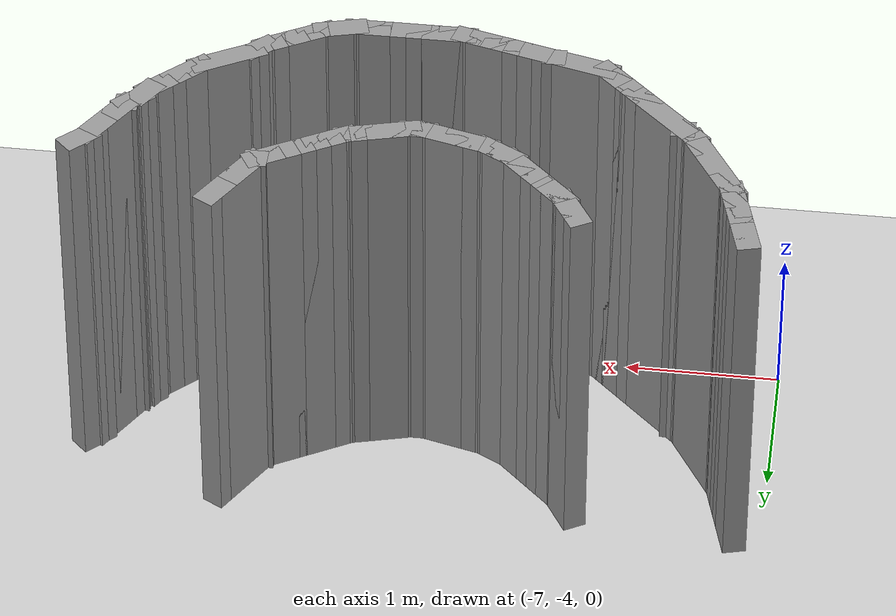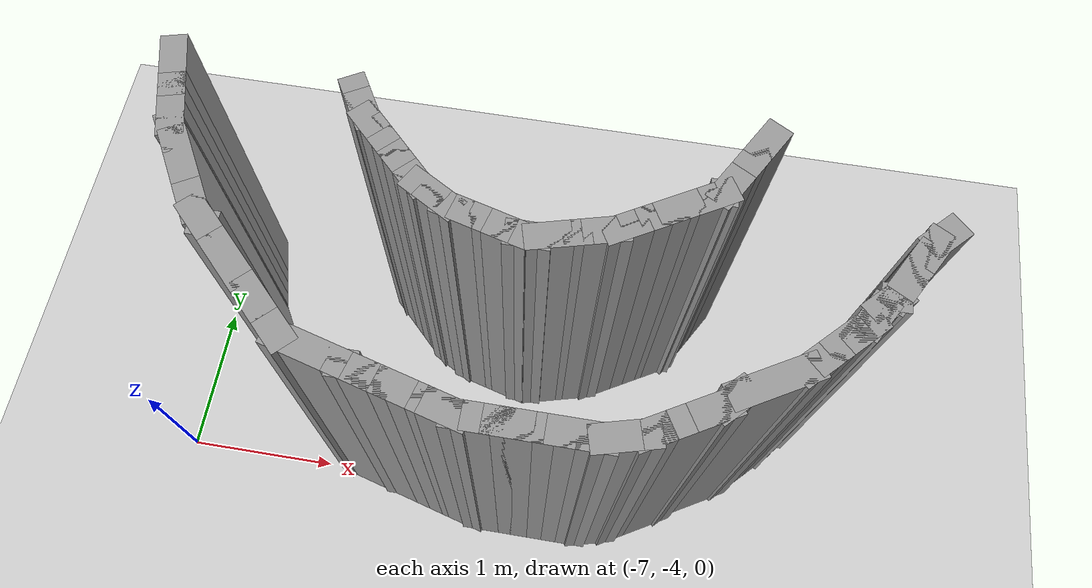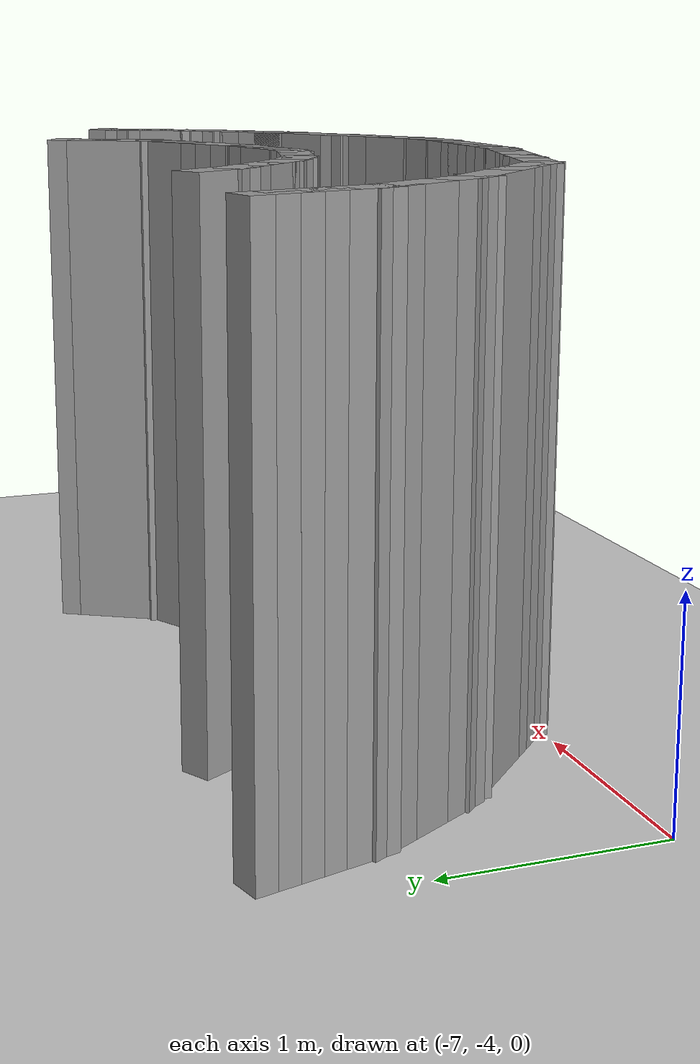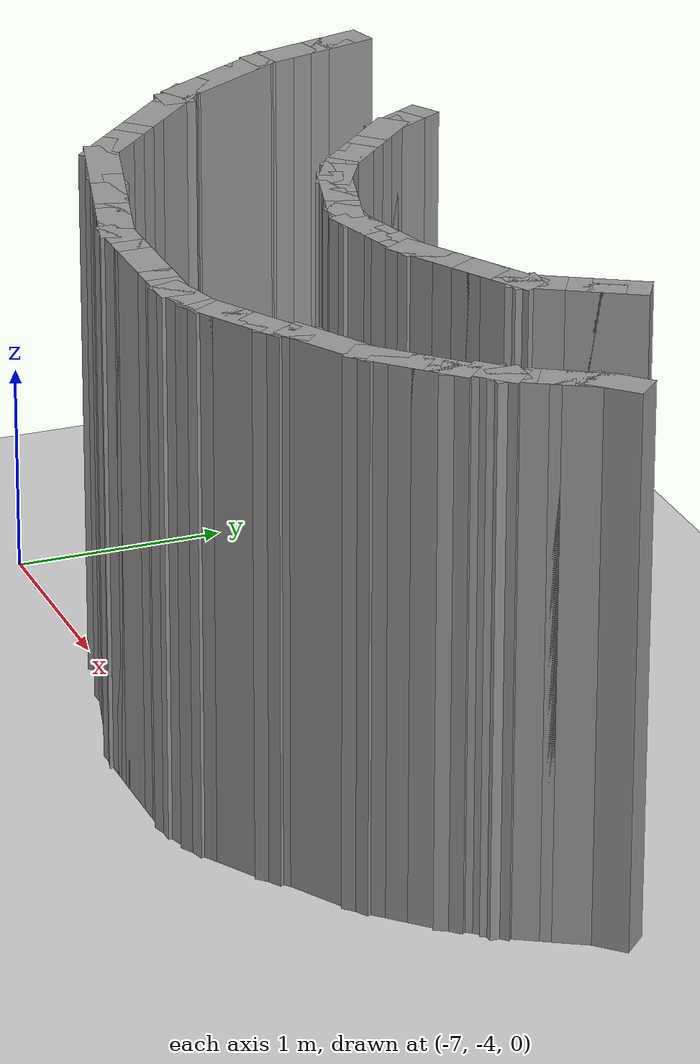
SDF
<sdf version="1.7">
 <world name="default">
  <model name="ground_plane">
   <static>1</static>
   <link name="link">
    <collision name="collision">
     <geometry><plane><normal>0 0 1</normal><size>100 100</size></plane></geometry>
     <surface><friction><ode><mu>100</mu><mu2>50</mu2></ode></friction></surface>
    </collision>
    <visual name="visual">
     <cast_shadows>0</cast_shadows>
     <geometry><plane><normal>0 0 1</normal><size>100 100</size></plane></geometry>
     <material>
      <script><uri>file://media/materials/scripts/gazebo.material</uri><name>Gazebo/Grey</name></script>
     </material>
    </visual>
   </link>
  </model>
  <model name="playground_track">
   <pose>0.405729 -1.1815 0 0 -0 0</pose>
   <link name="Wall_178">
    <collision name="Wall_178_Collision">
     <geometry><box><size>0.25 0.15 2.5</size></box></geometry>
     <pose>0 0 1.25 0 -0 0</pose>
    </collision>
    <visual name="Wall_178_Visual">
     <pose>0 0 1.25 0 -0 0</pose>
     <geometry><box><size>0.25 0.15 2.5</size></box></geometry>
     <material>
      <script><uri>file://media/materials/scripts/gazebo.material</uri><name>Gazebo/Grey</name></script>
      <ambient>1 1 1 1</ambient>
     </material>
     <meta><layer>0</layer></meta>
    </visual>
    <pose>-3.05179 -1.70277 0 0 -0 -2.35619</pose>
   </link>
   <link name="Wall_179">
    <collision name="Wall_179_Collision">
     <geometry><box><size>0.25 0.15 2.5</size></box></geometry>
     <pose>0 0 1.25 0 -0 0</pose>
    </collision>
    <visual name="Wall_179_Visual">
     <pose>0 0 1.25 0 -0 0</pose>
     <geometry><box><size>0.25 0.15 2.5</size></box></geometry>
     <material>
      <script><uri>file://media/materials/scripts/gazebo.material</uri><name>Gazebo/Grey</name></script>
      <ambient>1 1 1 1</ambient>
     </material>
     <meta><layer>0</layer></meta>
    </visual>
    <pose>-3.11215 -1.78143 0 0 -0 -2.0944</pose>
   </link>
   <link name="Wall_180">
    <collision name="Wall_180_Collision">
     <geometry><box><size>0.25 0.15 2.5</size></box></geometry>
     <pose>0 0 1.25 0 -0 0</pose>
    </collision>
    <visual name="Wall_180_Visual">
     <pose>0 0 1.25 0 -0 0</pose>
     <geometry><box><size>0.25 0.15 2.5</size></box></geometry>
     <material>
      <script><uri>file://media/materials/scripts/gazebo.material</uri><name>Gazebo/Grey</name></script>
      <ambient>1 1 1 1</ambient>
     </material>
     <meta><layer>0</layer></meta>
    </visual>
    <pose>-3.16215 -1.86803 0 0 -0 -2.0944</pose>
   </link>
   <link name="Wall_181">
    <collision name="Wall_181_Collision">
     <geometry><box><size>0.25 0.15 2.5</size></box></geometry>
     <pose>0 0 1.25 0 -0 0</pose>
    </collision>
    <visual name="Wall_181_Visual">
     <pose>0 0 1.25 0 -0 0</pose>
     <geometry><box><size>0.25 0.15 2.5</size></box></geometry>
     <material>
      <script><uri>file://media/materials/scripts/gazebo.material</uri><name>Gazebo/Grey</name></script>
      <ambient>1 1 1 1</ambient>
     </material>
     <meta><layer>0</layer></meta>
    </visual>
    <pose>-3.21215 -1.95463 0 0 -0 -2.0944</pose>
   </link>
   <link name="Wall_182">
    <collision name="Wall_182_Collision">
     <geometry><box><size>0.25 0.15 2.5</size></box></geometry>
     <pose>0 0 1.25 0 -0 0</pose>
    </collision>
    <visual name="Wall_182_Visual">
     <pose>0 0 1.25 0 -0 0</pose>
     <geometry><box><size>0.25 0.15 2.5</size></box></geometry>
     <material>
      <script><uri>file://media/materials/scripts/gazebo.material</uri><name>Gazebo/Grey</name></script>
      <ambient>1 1 1 1</ambient>
     </material>
     <meta><layer>0</layer></meta>
    </visual>
    <pose>-3.26215 -2.04124 0 0 -0 -2.0944</pose>
   </link>
   <link name="Wall_183">
    <collision name="Wall_183_Collision">
     <geometry><box><size>0.15 0.15 2.5</size></box></geometry>
     <pose>0 0 1.25 0 -0 0</pose>
    </collision>
    <visual name="Wall_183_Visual">
     <pose>0 0 1.25 0 -0 0</pose>
     <geometry><box><size>0.15 0.15 2.5</size></box></geometry>
     <material>
      <script><uri>file://media/materials/scripts/gazebo.material</uri><name>Gazebo/Grey</name></script>
      <ambient>1 1 1 1</ambient>
     </material>
     <meta><layer>0</layer></meta>
    </visual>
    <pose>-3.28715 -2.08454 0 0 -0 0</pose>
   </link>
   <link name="Wall_184">
    <collision name="Wall_184_Collision">
     <geometry><box><size>0.25 0.15 2.5</size></box></geometry>
     <pose>0 0 1.25 0 -0 0</pose>
    </collision>
    <visual name="Wall_184_Visual">
     <pose>0 0 1.25 0 -0 0</pose>
     <geometry><box><size>0.25 0.15 2.5</size></box></geometry>
     <material>
      <script><uri>file://media/materials/scripts/gazebo.material</uri><name>Gazebo/Grey</name></script>
      <ambient>1 1 1 1</ambient>
     </material>
     <meta><layer>0</layer></meta>
    </visual>
    <pose>-3.3225 -2.11989 0 0 -0 -2.35619</pose>
   </link>
   <link name="Wall_185">
    <collision name="Wall_185_Collision">
     <geometry><box><size>0.25 0.15 2.5</size></box></geometry>
     <pose>0 0 1.25 0 -0 0</pose>
    </collision>
    <visual name="Wall_185_Visual">
     <pose>0 0 1.25 0 -0 0</pose>
     <geometry><box><size>0.25 0.15 2.5</size></box></geometry>
     <material>
      <script><uri>file://media/materials/scripts/gazebo.material</uri><name>Gazebo/Grey</name></script>
      <ambient>1 1 1 1</ambient>
     </material>
     <meta><layer>0</layer></meta>
    </visual>
    <pose>-3.38286 -2.19855 0 0 -0 -2.0944</pose>
   </link>
   <link name="Wall_186">
    <collision name="Wall_186_Collision">
     <geometry><box><size>0.25 0.15 2.5</size></box></geometry>
     <pose>0 0 1.25 0 -0 0</pose>
    </collision>
    <visual name="Wall_186_Visual">
     <pose>0 0 1.25 0 -0 0</pose>
     <geometry><box><size>0.25 0.15 2.5</size></box></geometry>
     <material>
      <script><uri>file://media/materials/scripts/gazebo.material</uri><name>Gazebo/Grey</name></script>
      <ambient>1 1 1 1</ambient>
     </material>
     <meta><layer>0</layer></meta>
    </visual>
    <pose>-3.44321 -2.27721 0 0 -0 -2.35619</pose>
   </link>
   <link name="Wall_187">
    <collision name="Wall_187_Collision">
     <geometry><box><size>0.25 0.15 2.5</size></box></geometry>
     <pose>0 0 1.25 0 -0 0</pose>
    </collision>
    <visual name="Wall_187_Visual">
     <pose>0 0 1.25 0 -0 0</pose>
     <geometry><box><size>0.25 0.15 2.5</size></box></geometry>
     <material>
      <script><uri>file://media/materials/scripts/gazebo.material</uri><name>Gazebo/Grey</name></script>
      <ambient>1 1 1 1</ambient>
     </material>
     <meta><layer>0</layer></meta>
    </visual>
    <pose>-3.51392 -2.34792 0 0 -0 -2.35619</pose>
   </link>
   <link name="Wall_188">
    <collision name="Wall_188_Collision">
     <geometry><box><size>0.25 0.15 2.5</size></box></geometry>
     <pose>0 0 1.25 0 -0 0</pose>
    </collision>
    <visual name="Wall_188_Visual">
     <pose>0 0 1.25 0 -0 0</pose>
     <geometry><box><size>0.25 0.15 2.5</size></box></geometry>
     <material>
      <script><uri>file://media/materials/scripts/gazebo.material</uri><name>Gazebo/Grey</name></script>
      <ambient>1 1 1 1</ambient>
     </material>
     <meta><layer>0</layer></meta>
    </visual>
    <pose>-3.58464 -2.41863 0 0 -0 -2.35619</pose>
   </link>
   <link name="Wall_189">
    <collision name="Wall_189_Collision">
     <geometry><box><size>0.25 0.15 2.5</size></box></geometry>
     <pose>0 0 1.25 0 -0 0</pose>
    </collision>
    <visual name="Wall_189_Visual">
     <pose>0 0 1.25 0 -0 0</pose>
     <geometry><box><size>0.25 0.15 2.5</size></box></geometry>
     <material>
      <script><uri>file://media/materials/scripts/gazebo.material</uri><name>Gazebo/Grey</name></script>
      <ambient>1 1 1 1</ambient>
     </material>
     <meta><layer>0</layer></meta>
    </visual>
    <pose>-3.65535 -2.48934 0 0 -0 -2.35619</pose>
   </link>
   <link name="Wall_190">
    <collision name="Wall_190_Collision">
     <geometry><box><size>0.5 0.15 2.5</size></box></geometry>
     <pose>0 0 1.25 0 -0 0</pose>
    </collision>
    <visual name="Wall_190_Visual">
     <pose>0 0 1.25 0 -0 0</pose>
     <geometry><box><size>0.5 0.15 2.5</size></box></geometry>
     <material>
      <script><uri>file://media/materials/scripts/gazebo.material</uri><name>Gazebo/Grey</name></script>
      <ambient>1 1 1 1</ambient>
     </material>
     <meta><layer>0</layer></meta>
    </visual>
    <pose>-3.84226 -2.61219 0 0 -0 -2.61799</pose>
   </link>
   <link name="Wall_191">
    <collision name="Wall_191_Collision">
     <geometry><box><size>0.25 0.15 2.5</size></box></geometry>
     <pose>0 0 1.25 0 -0 0</pose>
    </collision>
    <visual name="Wall_191_Visual">
     <pose>0 0 1.25 0 -0 0</pose>
     <geometry><box><size>0.25 0.15 2.5</size></box></geometry>
     <material>
      <script><uri>file://media/materials/scripts/gazebo.material</uri><name>Gazebo/Grey</name></script>
      <ambient>1 1 1 1</ambient>
     </material>
     <meta><layer>0</layer></meta>
    </visual>
    <pose>-4.02916 -2.73505 0 0 -0 -2.35619</pose>
   </link>
   <link name="Wall_192">
    <collision name="Wall_192_Collision">
     <geometry><box><size>0.25 0.15 2.5</size></box></geometry>
     <pose>0 0 1.25 0 -0 0</pose>
    </collision>
    <visual name="Wall_192_Visual">
     <pose>0 0 1.25 0 -0 0</pose>
     <geometry><box><size>0.25 0.15 2.5</size></box></geometry>
     <material>
      <script><uri>file://media/materials/scripts/gazebo.material</uri><name>Gazebo/Grey</name></script>
      <ambient>1 1 1 1</ambient>
     </material>
     <meta><layer>0</layer></meta>
    </visual>
    <pose>-4.10782 -2.7954 0 0 -0 -2.61799</pose>
   </link>
   <link name="Wall_193">
    <collision name="Wall_193_Collision">
     <geometry><box><size>0.25 0.15 2.5</size></box></geometry>
     <pose>0 0 1.25 0 -0 0</pose>
    </collision>
    <visual name="Wall_193_Visual">
     <pose>0 0 1.25 0 -0 0</pose>
     <geometry><box><size>0.25 0.15 2.5</size></box></geometry>
     <material>
      <script><uri>file://media/materials/scripts/gazebo.material</uri><name>Gazebo/Grey</name></script>
      <ambient>1 1 1 1</ambient>
     </material>
     <meta><layer>0</layer></meta>
    </visual>
    <pose>-4.19442 -2.8454 0 0 -0 -2.61799</pose>
   </link>
   <link name="Wall_194">
    <collision name="Wall_194_Collision">
     <geometry><box><size>0.25 0.15 2.5</size></box></geometry>
     <pose>0 0 1.25 0 -0 0</pose>
    </collision>
    <visual name="Wall_194_Visual">
     <pose>0 0 1.25 0 -0 0</pose>
     <geometry><box><size>0.25 0.15 2.5</size></box></geometry>
     <material>
      <script><uri>file://media/materials/scripts/gazebo.material</uri><name>Gazebo/Grey</name></script>
      <ambient>1 1 1 1</ambient>
     </material>
     <meta><layer>0</layer></meta>
    </visual>
    <pose>-4.28103 -2.8954 0 0 -0 -2.61799</pose>
   </link>
   <link name="Wall_195">
    <collision name="Wall_195_Collision">
     <geometry><box><size>0.25 0.15 2.5</size></box></geometry>
     <pose>0 0 1.25 0 -0 0</pose>
    </collision>
    <visual name="Wall_195_Visual">
     <pose>0 0 1.25 0 -0 0</pose>
     <geometry><box><size>0.25 0.15 2.5</size></box></geometry>
     <material>
      <script><uri>file://media/materials/scripts/gazebo.material</uri><name>Gazebo/Grey</name></script>
      <ambient>1 1 1 1</ambient>
     </material>
     <meta><layer>0</layer></meta>
    </visual>
    <pose>-4.36763 -2.9454 0 0 -0 -2.61799</pose>
   </link>
   <link name="Wall_196">
    <collision name="Wall_196_Collision">
     <geometry><box><size>0.25 0.15 2.5</size></box></geometry>
     <pose>0 0 1.25 0 -0 0</pose>
    </collision>
    <visual name="Wall_196_Visual">
     <pose>0 0 1.25 0 -0 0</pose>
     <geometry><box><size>0.25 0.15 2.5</size></box></geometry>
     <material>
      <script><uri>file://media/materials/scripts/gazebo.material</uri><name>Gazebo/Grey</name></script>
      <ambient>1 1 1 1</ambient>
     </material>
     <meta><layer>0</layer></meta>
    </visual>
    <pose>-4.45923 -2.98334 0 0 -0 -2.87979</pose>
   </link>
   <link name="Wall_197">
    <collision name="Wall_197_Collision">
     <geometry><box><size>0.25 0.15 2.5</size></box></geometry>
     <pose>0 0 1.25 0 -0 0</pose>
    </collision>
    <visual name="Wall_197_Visual">
     <pose>0 0 1.25 0 -0 0</pose>
     <geometry><box><size>0.25 0.15 2.5</size></box></geometry>
     <material>
      <script><uri>file://media/materials/scripts/gazebo.material</uri><name>Gazebo/Grey</name></script>
      <ambient>1 1 1 1</ambient>
     </material>
     <meta><layer>0</layer></meta>
    </visual>
    <pose>-4.55582 -3.00923 0 0 -0 -2.87979</pose>
   </link>
   <link name="Wall_198">
    <collision name="Wall_198_Collision">
     <geometry><box><size>0.25 0.15 2.5</size></box></geometry>
     <pose>0 0 1.25 0 -0 0</pose>
    </collision>
    <visual name="Wall_198_Visual">
     <pose>0 0 1.25 0 -0 0</pose>
     <geometry><box><size>0.25 0.15 2.5</size></box></geometry>
     <material>
      <script><uri>file://media/materials/scripts/gazebo.material</uri><name>Gazebo/Grey</name></script>
      <ambient>1 1 1 1</ambient>
     </material>
     <meta><layer>0</layer></meta>
    </visual>
    <pose>-4.65412 -3.02217 0 0 -0 3.14159</pose>
   </link>
   <link name="Wall_199">
    <collision name="Wall_199_Collision">
     <geometry><box><size>0.25 0.15 2.5</size></box></geometry>
     <pose>0 0 1.25 0 -0 0</pose>
    </collision>
    <visual name="Wall_199_Visual">
     <pose>0 0 1.25 0 -0 0</pose>
     <geometry><box><size>0.25 0.15 2.5</size></box></geometry>
     <material>
      <script><uri>file://media/materials/scripts/gazebo.material</uri><name>Gazebo/Grey</name></script>
      <ambient>1 1 1 1</ambient>
     </material>
     <meta><layer>0</layer></meta>
    </visual>
    <pose>-4.75412 -3.02217 0 0 -0 3.14159</pose>
   </link>
   <link name="Wall_200">
    <collision name="Wall_200_Collision">
     <geometry><box><size>0.25 0.15 2.5</size></box></geometry>
     <pose>0 0 1.25 0 -0 0</pose>
    </collision>
    <visual name="Wall_200_Visual">
     <pose>0 0 1.25 0 -0 0</pose>
     <geometry><box><size>0.25 0.15 2.5</size></box></geometry>
     <material>
      <script><uri>file://media/materials/scripts/gazebo.material</uri><name>Gazebo/Grey</name></script>
      <ambient>1 1 1 1</ambient>
     </material>
     <meta><layer>0</layer></meta>
    </visual>
    <pose>-4.85412 -3.02217 0 0 -0 3.14159</pose>
   </link>
   <link name="Wall_201">
    <collision name="Wall_201_Collision">
     <geometry><box><size>0.25 0.15 2.5</size></box></geometry>
     <pose>0 0 1.25 0 -0 0</pose>
    </collision>
    <visual name="Wall_201_Visual">
     <pose>0 0 1.25 0 -0 0</pose>
     <geometry><box><size>0.25 0.15 2.5</size></box></geometry>
     <material>
      <script><uri>file://media/materials/scripts/gazebo.material</uri><name>Gazebo/Grey</name></script>
      <ambient>1 1 1 1</ambient>
     </material>
     <meta><layer>0</layer></meta>
    </visual>
    <pose>-4.95412 -3.02217 0 0 -0 3.14159</pose>
   </link>
   <link name="Wall_202">
    <collision name="Wall_202_Collision">
     <geometry><box><size>0.25 0.15 2.5</size></box></geometry>
     <pose>0 0 1.25 0 -0 0</pose>
    </collision>
    <visual name="Wall_202_Visual">
     <pose>0 0 1.25 0 -0 0</pose>
     <geometry><box><size>0.25 0.15 2.5</size></box></geometry>
     <material>
      <script><uri>file://media/materials/scripts/gazebo.material</uri><name>Gazebo/Grey</name></script>
      <ambient>1 1 1 1</ambient>
     </material>
     <meta><layer>0</layer></meta>
    </visual>
    <pose>-5.05412 -3.02217 0 0 -0 3.14159</pose>
   </link>
   <link name="Wall_203">
    <collision name="Wall_203_Collision">
     <geometry><box><size>0.15 0.15 2.5</size></box></geometry>
     <pose>0 0 1.25 0 -0 0</pose>
    </collision>
    <visual name="Wall_203_Visual">
     <pose>0 0 1.25 0 -0 0</pose>
     <geometry><box><size>0.15 0.15 2.5</size></box></geometry>
     <material>
      <script><uri>file://media/materials/scripts/gazebo.material</uri><name>Gazebo/Grey</name></script>
      <ambient>1 1 1 1</ambient>
     </material>
     <meta><layer>0</layer></meta>
    </visual>
    <pose>-5.10412 -3.02217 0 0 -0 0</pose>
   </link>
   <link name="Wall_204">
    <collision name="Wall_204_Collision">
     <geometry><box><size>0.25 0.15 2.5</size></box></geometry>
     <pose>0 0 1.25 0 -0 0</pose>
    </collision>
    <visual name="Wall_204_Visual">
     <pose>0 0 1.25 0 -0 0</pose>
     <geometry><box><size>0.25 0.15 2.5</size></box></geometry>
     <material>
      <script><uri>file://media/materials/scripts/gazebo.material</uri><name>Gazebo/Grey</name></script>
      <ambient>1 1 1 1</ambient>
     </material>
     <meta><layer>0</layer></meta>
    </visual>
    <pose>-5.15412 -3.02217 0 0 -0 3.14159</pose>
   </link>
   <link name="Wall_205">
    <collision name="Wall_205_Collision">
     <geometry><box><size>0.25 0.15 2.5</size></box></geometry>
     <pose>0 0 1.25 0 -0 0</pose>
    </collision>
    <visual name="Wall_205_Visual">
     <pose>0 0 1.25 0 -0 0</pose>
     <geometry><box><size>0.25 0.15 2.5</size></box></geometry>
     <material>
      <script><uri>file://media/materials/scripts/gazebo.material</uri><name>Gazebo/Grey</name></script>
      <ambient>1 1 1 1</ambient>
     </material>
     <meta><layer>0</layer></meta>
    </visual>
    <pose>-5.25412 -3.02217 0 0 -0 3.14159</pose>
   </link>
   <link name="Wall_206">
    <collision name="Wall_206_Collision">
     <geometry><box><size>0.25 0.15 2.5</size></box></geometry>
     <pose>0 0 1.25 0 -0 0</pose>
    </collision>
    <visual name="Wall_206_Visual">
     <pose>0 0 1.25 0 -0 0</pose>
     <geometry><box><size>0.25 0.15 2.5</size></box></geometry>
     <material>
      <script><uri>file://media/materials/scripts/gazebo.material</uri><name>Gazebo/Grey</name></script>
      <ambient>1 1 1 1</ambient>
     </material>
     <meta><layer>0</layer></meta>
    </visual>
    <pose>-5.35241 -3.00923 0 0 -0 2.87979</pose>
   </link>
   <link name="Wall_207">
    <collision name="Wall_207_Collision">
     <geometry><box><size>0.25 0.15 2.5</size></box></geometry>
     <pose>0 0 1.25 0 -0 0</pose>
    </collision>
    <visual name="Wall_207_Visual">
     <pose>0 0 1.25 0 -0 0</pose>
     <geometry><box><size>0.25 0.15 2.5</size></box></geometry>
     <material>
      <script><uri>file://media/materials/scripts/gazebo.material</uri><name>Gazebo/Grey</name></script>
      <ambient>1 1 1 1</ambient>
     </material>
     <meta><layer>0</layer></meta>
    </visual>
    <pose>-5.449 -2.98334 0 0 -0 2.87979</pose>
   </link>
   <link name="Wall_208">
    <collision name="Wall_208_Collision">
     <geometry><box><size>0.25 0.15 2.5</size></box></geometry>
     <pose>0 0 1.25 0 -0 0</pose>
    </collision>
    <visual name="Wall_208_Visual">
     <pose>0 0 1.25 0 -0 0</pose>
     <geometry><box><size>0.25 0.15 2.5</size></box></geometry>
     <material>
      <script><uri>file://media/materials/scripts/gazebo.material</uri><name>Gazebo/Grey</name></script>
      <ambient>1 1 1 1</ambient>
     </material>
     <meta><layer>0</layer></meta>
    </visual>
    <pose>-5.5456 -2.95746 0 0 -0 2.87979</pose>
   </link>
   <link name="Wall_209">
    <collision name="Wall_209_Collision">
     <geometry><box><size>0.25 0.15 2.5</size></box></geometry>
     <pose>0 0 1.25 0 -0 0</pose>
    </collision>
    <visual name="Wall_209_Visual">
     <pose>0 0 1.25 0 -0 0</pose>
     <geometry><box><size>0.25 0.15 2.5</size></box></geometry>
     <material>
      <script><uri>file://media/materials/scripts/gazebo.material</uri><name>Gazebo/Grey</name></script>
      <ambient>1 1 1 1</ambient>
     </material>
     <meta><layer>0</layer></meta>
    </visual>
    <pose>-5.64219 -2.93158 0 0 -0 2.87979</pose>
   </link>
   <link name="Wall_210">
    <collision name="Wall_210_Collision">
     <geometry><box><size>0.25 0.15 2.5</size></box></geometry>
     <pose>0 0 1.25 0 -0 0</pose>
    </collision>
    <visual name="Wall_210_Visual">
     <pose>0 0 1.25 0 -0 0</pose>
     <geometry><box><size>0.25 0.15 2.5</size></box></geometry>
     <material>
      <script><uri>file://media/materials/scripts/gazebo.material</uri><name>Gazebo/Grey</name></script>
      <ambient>1 1 1 1</ambient>
     </material>
     <meta><layer>0</layer></meta>
    </visual>
    <pose>-5.73878 -2.9057 0 0 -0 2.87979</pose>
   </link>
   <link name="Wall_211">
    <collision name="Wall_211_Collision">
     <geometry><box><size>0.25 0.15 2.5</size></box></geometry>
     <pose>0 0 1.25 0 -0 0</pose>
    </collision>
    <visual name="Wall_211_Visual">
     <pose>0 0 1.25 0 -0 0</pose>
     <geometry><box><size>0.25 0.15 2.5</size></box></geometry>
     <material>
      <script><uri>file://media/materials/scripts/gazebo.material</uri><name>Gazebo/Grey</name></script>
      <ambient>1 1 1 1</ambient>
     </material>
     <meta><layer>0</layer></meta>
    </visual>
    <pose>-5.83537 -2.87982 0 0 -0 2.87979</pose>
   </link>
   <link name="Wall_212">
    <collision name="Wall_212_Collision">
     <geometry><box><size>0.15 0.15 2.5</size></box></geometry>
     <pose>0 0 1.25 0 -0 0</pose>
    </collision>
    <visual name="Wall_212_Visual">
     <pose>0 0 1.25 0 -0 0</pose>
     <geometry><box><size>0.15 0.15 2.5</size></box></geometry>
     <material>
      <script><uri>file://media/materials/scripts/gazebo.material</uri><name>Gazebo/Grey</name></script>
      <ambient>1 1 1 1</ambient>
     </material>
     <meta><layer>0</layer></meta>
    </visual>
    <pose>-5.88367 -2.86688 0 0 -0 0</pose>
   </link>
   <link name="Wall_213">
    <collision name="Wall_213_Collision">
     <geometry><box><size>0.5 0.15 2.5</size></box></geometry>
     <pose>0 0 1.25 0 -0 0</pose>
    </collision>
    <visual name="Wall_213_Visual">
     <pose>0 0 1.25 0 -0 0</pose>
     <geometry><box><size>0.5 0.15 2.5</size></box></geometry>
     <material>
      <script><uri>file://media/materials/scripts/gazebo.material</uri><name>Gazebo/Grey</name></script>
      <ambient>1 1 1 1</ambient>
     </material>
     <meta><layer>0</layer></meta>
    </visual>
    <pose>-6.05271 -2.82158 0 0 -0 2.87979</pose>
   </link>
   <link name="Wall_214">
    <collision name="Wall_214_Collision">
     <geometry><box><size>0.25 0.15 2.5</size></box></geometry>
     <pose>0 0 1.25 0 -0 0</pose>
    </collision>
    <visual name="Wall_214_Visual">
     <pose>0 0 1.25 0 -0 0</pose>
     <geometry><box><size>0.25 0.15 2.5</size></box></geometry>
     <material>
      <script><uri>file://media/materials/scripts/gazebo.material</uri><name>Gazebo/Grey</name></script>
      <ambient>1 1 1 1</ambient>
     </material>
     <meta><layer>0</layer></meta>
    </visual>
    <pose>-6.2571 -2.74093 0 0 -0 2.35619</pose>
   </link>
   <link name="Wall_215">
    <collision name="Wall_215_Collision">
     <geometry><box><size>0.25 0.15 2.5</size></box></geometry>
     <pose>0 0 1.25 0 -0 0</pose>
    </collision>
    <visual name="Wall_215_Visual">
     <pose>0 0 1.25 0 -0 0</pose>
     <geometry><box><size>0.25 0.15 2.5</size></box></geometry>
     <material>
      <script><uri>file://media/materials/scripts/gazebo.material</uri><name>Gazebo/Grey</name></script>
      <ambient>1 1 1 1</ambient>
     </material>
     <meta><layer>0</layer></meta>
    </visual>
    <pose>-6.32781 -2.67022 0 0 -0 2.35619</pose>
   </link>
   <link name="Wall_216">
    <collision name="Wall_216_Collision">
     <geometry><box><size>0.25 0.15 2.5</size></box></geometry>
     <pose>0 0 1.25 0 -0 0</pose>
    </collision>
    <visual name="Wall_216_Visual">
     <pose>0 0 1.25 0 -0 0</pose>
     <geometry><box><size>0.25 0.15 2.5</size></box></geometry>
     <material>
      <script><uri>file://media/materials/scripts/gazebo.material</uri><name>Gazebo/Grey</name></script>
      <ambient>1 1 1 1</ambient>
     </material>
     <meta><layer>0</layer></meta>
    </visual>
    <pose>-6.39852 -2.59951 0 0 -0 2.35619</pose>
   </link>
   <link name="Wall_217">
    <collision name="Wall_217_Collision">
     <geometry><box><size>0.25 0.15 2.5</size></box></geometry>
     <pose>0 0 1.25 0 -0 0</pose>
    </collision>
    <visual name="Wall_217_Visual">
     <pose>0 0 1.25 0 -0 0</pose>
     <geometry><box><size>0.25 0.15 2.5</size></box></geometry>
     <material>
      <script><uri>file://media/materials/scripts/gazebo.material</uri><name>Gazebo/Grey</name></script>
      <ambient>1 1 1 1</ambient>
     </material>
     <meta><layer>0</layer></meta>
    </visual>
    <pose>-6.46923 -2.5288 0 0 -0 2.35619</pose>
   </link>
   <link name="Wall_218">
    <collision name="Wall_218_Collision">
     <geometry><box><size>0.5 0.15 2.5</size></box></geometry>
     <pose>0 0 1.25 0 -0 0</pose>
    </collision>
    <visual name="Wall_218_Visual">
     <pose>0 0 1.25 0 -0 0</pose>
     <geometry><box><size>0.5 0.15 2.5</size></box></geometry>
     <material>
      <script><uri>file://media/materials/scripts/gazebo.material</uri><name>Gazebo/Grey</name></script>
      <ambient>1 1 1 1</ambient>
     </material>
     <meta><layer>0</layer></meta>
    </visual>
    <pose>-6.62833 -2.3697 0 0 -0 2.35619</pose>
   </link>
   <link name="Wall_219">
    <collision name="Wall_219_Collision">
     <geometry><box><size>0.15 0.15 2.5</size></box></geometry>
     <pose>0 0 1.25 0 -0 0</pose>
    </collision>
    <visual name="Wall_219_Visual">
     <pose>0 0 1.25 0 -0 0</pose>
     <geometry><box><size>0.15 0.15 2.5</size></box></geometry>
     <material>
      <script><uri>file://media/materials/scripts/gazebo.material</uri><name>Gazebo/Grey</name></script>
      <ambient>1 1 1 1</ambient>
     </material>
     <meta><layer>0</layer></meta>
    </visual>
    <pose>-6.75207 -2.24596 0 0 -0 0</pose>
   </link>
   <link name="Wall_220">
    <collision name="Wall_220_Collision">
     <geometry><box><size>0.25 0.15 2.5</size></box></geometry>
     <pose>0 0 1.25 0 -0 0</pose>
    </collision>
    <visual name="Wall_220_Visual">
     <pose>0 0 1.25 0 -0 0</pose>
     <geometry><box><size>0.25 0.15 2.5</size></box></geometry>
     <material>
      <script><uri>file://media/materials/scripts/gazebo.material</uri><name>Gazebo/Grey</name></script>
      <ambient>1 1 1 1</ambient>
     </material>
     <meta><layer>0</layer></meta>
    </visual>
    <pose>-6.78743 -2.2106 0 0 -0 2.35619</pose>
   </link>
   <link name="Wall_221">
    <collision name="Wall_221_Collision">
     <geometry><box><size>0.25 0.15 2.5</size></box></geometry>
     <pose>0 0 1.25 0 -0 0</pose>
    </collision>
    <visual name="Wall_221_Visual">
     <pose>0 0 1.25 0 -0 0</pose>
     <geometry><box><size>0.25 0.15 2.5</size></box></geometry>
     <material>
      <script><uri>file://media/materials/scripts/gazebo.material</uri><name>Gazebo/Grey</name></script>
      <ambient>1 1 1 1</ambient>
     </material>
     <meta><layer>0</layer></meta>
    </visual>
    <pose>-6.84779 -2.13195 0 0 -0 2.0944</pose>
   </link>
   <link name="Wall_222">
    <collision name="Wall_222_Collision">
     <geometry><box><size>0.5 0.15 2.5</size></box></geometry>
     <pose>0 0 1.25 0 -0 0</pose>
    </collision>
    <visual name="Wall_222_Visual">
     <pose>0 0 1.25 0 -0 0</pose>
     <geometry><box><size>0.5 0.15 2.5</size></box></geometry>
     <material>
      <script><uri>file://media/materials/scripts/gazebo.material</uri><name>Gazebo/Grey</name></script>
      <ambient>1 1 1 1</ambient>
     </material>
     <meta><layer>0</layer></meta>
    </visual>
    <pose>-6.96029 -1.93709 0 0 -0 2.0944</pose>
   </link>
   <link name="Wall_223">
    <collision name="Wall_223_Collision">
     <geometry><box><size>0.25 0.15 2.5</size></box></geometry>
     <pose>0 0 1.25 0 -0 0</pose>
    </collision>
    <visual name="Wall_223_Visual">
     <pose>0 0 1.25 0 -0 0</pose>
     <geometry><box><size>0.25 0.15 2.5</size></box></geometry>
     <material>
      <script><uri>file://media/materials/scripts/gazebo.material</uri><name>Gazebo/Grey</name></script>
      <ambient>1 1 1 1</ambient>
     </material>
     <meta><layer>0</layer></meta>
    </visual>
    <pose>-7.07279 -1.74224 0 0 -0 2.0944</pose>
   </link>
   <link name="Wall_224">
    <collision name="Wall_224_Collision">
     <geometry><box><size>0.25 0.15 2.5</size></box></geometry>
     <pose>0 0 1.25 0 -0 0</pose>
    </collision>
    <visual name="Wall_224_Visual">
     <pose>0 0 1.25 0 -0 0</pose>
     <geometry><box><size>0.25 0.15 2.5</size></box></geometry>
     <material>
      <script><uri>file://media/materials/scripts/gazebo.material</uri><name>Gazebo/Grey</name></script>
      <ambient>1 1 1 1</ambient>
     </material>
     <meta><layer>0</layer></meta>
    </visual>
    <pose>-7.11073 -1.65064 0 0 -0 1.8326</pose>
   </link>
   <link name="Wall_225">
    <collision name="Wall_225_Collision">
     <geometry><box><size>0.25 0.15 2.5</size></box></geometry>
     <pose>0 0 1.25 0 -0 0</pose>
    </collision>
    <visual name="Wall_225_Visual">
     <pose>0 0 1.25 0 -0 0</pose>
     <geometry><box><size>0.25 0.15 2.5</size></box></geometry>
     <material>
      <script><uri>file://media/materials/scripts/gazebo.material</uri><name>Gazebo/Grey</name></script>
      <ambient>1 1 1 1</ambient>
     </material>
     <meta><layer>0</layer></meta>
    </visual>
    <pose>-7.13661 -1.55405 0 0 -0 1.8326</pose>
   </link>
   <link name="Wall_226">
    <collision name="Wall_226_Collision">
     <geometry><box><size>0.25 0.15 2.5</size></box></geometry>
     <pose>0 0 1.25 0 -0 0</pose>
    </collision>
    <visual name="Wall_226_Visual">
     <pose>0 0 1.25 0 -0 0</pose>
     <geometry><box><size>0.25 0.15 2.5</size></box></geometry>
     <material>
      <script><uri>file://media/materials/scripts/gazebo.material</uri><name>Gazebo/Grey</name></script>
      <ambient>1 1 1 1</ambient>
     </material>
     <meta><layer>0</layer></meta>
    </visual>
    <pose>-7.16249 -1.45745 0 0 -0 1.8326</pose>
   </link>
   <link name="Wall_227">
    <collision name="Wall_227_Collision">
     <geometry><box><size>0.25 0.15 2.5</size></box></geometry>
     <pose>0 0 1.25 0 -0 0</pose>
    </collision>
    <visual name="Wall_227_Visual">
     <pose>0 0 1.25 0 -0 0</pose>
     <geometry><box><size>0.25 0.15 2.5</size></box></geometry>
     <material>
      <script><uri>file://media/materials/scripts/gazebo.material</uri><name>Gazebo/Grey</name></script>
      <ambient>1 1 1 1</ambient>
     </material>
     <meta><layer>0</layer></meta>
    </visual>
    <pose>-7.18837 -1.36086 0 0 -0 1.8326</pose>
   </link>
   <link name="Wall_228">
    <collision name="Wall_228_Collision">
     <geometry><box><size>0.25 0.15 2.5</size></box></geometry>
     <pose>0 0 1.25 0 -0 0</pose>
    </collision>
    <visual name="Wall_228_Visual">
     <pose>0 0 1.25 0 -0 0</pose>
     <geometry><box><size>0.25 0.15 2.5</size></box></geometry>
     <material>
      <script><uri>file://media/materials/scripts/gazebo.material</uri><name>Gazebo/Grey</name></script>
      <ambient>1 1 1 1</ambient>
     </material>
     <meta><layer>0</layer></meta>
    </visual>
    <pose>-7.21425 -1.26427 0 0 -0 1.8326</pose>
   </link>
   <link name="Wall_382">
    <collision name="Wall_382_Collision">
     <geometry><box><size>0.25 0.15 2.5</size></box></geometry>
     <pose>0 0 1.25 0 -0 0</pose>
    </collision>
    <visual name="Wall_382_Visual">
     <pose>0 0 1.25 0 -0 0</pose>
     <geometry><box><size>0.25 0.15 2.5</size></box></geometry>
     <material>
      <script><uri>file://media/materials/scripts/gazebo.material</uri><name>Gazebo/Grey</name></script>
      <ambient>1 1 1 1</ambient>
     </material>
     <meta><layer>0</layer></meta>
    </visual>
    <pose>-3.96518 -1.29072 0 0 -0 -2.0944</pose>
   </link>
   <link name="Wall_383">
    <collision name="Wall_383_Collision">
     <geometry><box><size>0.25 0.15 2.5</size></box></geometry>
     <pose>0 0 1.25 0 -0 0</pose>
    </collision>
    <visual name="Wall_383_Visual">
     <pose>0 0 1.25 0 -0 0</pose>
     <geometry><box><size>0.25 0.15 2.5</size></box></geometry>
     <material>
      <script><uri>file://media/materials/scripts/gazebo.material</uri><name>Gazebo/Grey</name></script>
      <ambient>1 1 1 1</ambient>
     </material>
     <meta><layer>0</layer></meta>
    </visual>
    <pose>-4.01518 -1.37732 0 0 -0 -2.0944</pose>
   </link>
   <link name="Wall_389">
    <collision name="Wall_389_Collision">
     <geometry><box><size>0.5 0.15 2.5</size></box></geometry>
     <pose>0 0 1.25 0 -0 0</pose>
    </collision>
    <visual name="Wall_389_Visual">
     <pose>0 0 1.25 0 -0 0</pose>
     <geometry><box><size>0.5 0.15 2.5</size></box></geometry>
     <material>
      <script><uri>file://media/materials/scripts/gazebo.material</uri><name>Gazebo/Grey</name></script>
      <ambient>1 1 1 1</ambient>
     </material>
     <meta><layer>0</layer></meta>
    </visual>
    <pose>-4.07768 -1.48557 0 0 -0 -2.0944</pose>
   </link>
   <link name="Wall_390">
    <collision name="Wall_390_Collision">
     <geometry><box><size>0.15 0.15 2.5</size></box></geometry>
     <pose>0 0 1.25 0 -0 0</pose>
    </collision>
    <visual name="Wall_390_Visual">
     <pose>0 0 1.25 0 -0 0</pose>
     <geometry><box><size>0.15 0.15 2.5</size></box></geometry>
     <material>
      <script><uri>file://media/materials/scripts/gazebo.material</uri><name>Gazebo/Grey</name></script>
      <ambient>1 1 1 1</ambient>
     </material>
     <meta><layer>0</layer></meta>
    </visual>
    <pose>-4.16518 -1.63713 0 0 -0 0</pose>
   </link>
   <link name="Wall_391">
    <collision name="Wall_391_Collision">
     <geometry><box><size>0.25 0.15 2.5</size></box></geometry>
     <pose>0 0 1.25 0 -0 0</pose>
    </collision>
    <visual name="Wall_391_Visual">
     <pose>0 0 1.25 0 -0 0</pose>
     <geometry><box><size>0.25 0.15 2.5</size></box></geometry>
     <material>
      <script><uri>file://media/materials/scripts/gazebo.material</uri><name>Gazebo/Grey</name></script>
      <ambient>1 1 1 1</ambient>
     </material>
     <meta><layer>0</layer></meta>
    </visual>
    <pose>-4.20848 -1.66213 0 0 -0 -2.61799</pose>
   </link>
   <link name="Wall_392">
    <collision name="Wall_392_Collision">
     <geometry><box><size>0.25 0.15 2.5</size></box></geometry>
     <pose>0 0 1.25 0 -0 0</pose>
    </collision>
    <visual name="Wall_392_Visual">
     <pose>0 0 1.25 0 -0 0</pose>
     <geometry><box><size>0.25 0.15 2.5</size></box></geometry>
     <material>
      <script><uri>file://media/materials/scripts/gazebo.material</uri><name>Gazebo/Grey</name></script>
      <ambient>1 1 1 1</ambient>
     </material>
     <meta><layer>0</layer></meta>
    </visual>
    <pose>-4.29509 -1.71213 0 0 -0 -2.61799</pose>
   </link>
   <link name="Wall_393">
    <collision name="Wall_393_Collision">
     <geometry><box><size>0.25 0.15 2.5</size></box></geometry>
     <pose>0 0 1.25 0 -0 0</pose>
    </collision>
    <visual name="Wall_393_Visual">
     <pose>0 0 1.25 0 -0 0</pose>
     <geometry><box><size>0.25 0.15 2.5</size></box></geometry>
     <material>
      <script><uri>file://media/materials/scripts/gazebo.material</uri><name>Gazebo/Grey</name></script>
      <ambient>1 1 1 1</ambient>
     </material>
     <meta><layer>0</layer></meta>
    </visual>
    <pose>-4.38169 -1.76213 0 0 -0 -2.61799</pose>
   </link>
   <link name="Wall_394">
    <collision name="Wall_394_Collision">
     <geometry><box><size>0.25 0.15 2.5</size></box></geometry>
     <pose>0 0 1.25 0 -0 0</pose>
    </collision>
    <visual name="Wall_394_Visual">
     <pose>0 0 1.25 0 -0 0</pose>
     <geometry><box><size>0.25 0.15 2.5</size></box></geometry>
     <material>
      <script><uri>file://media/materials/scripts/gazebo.material</uri><name>Gazebo/Grey</name></script>
      <ambient>1 1 1 1</ambient>
     </material>
     <meta><layer>0</layer></meta>
    </visual>
    <pose>-4.46829 -1.81213 0 0 -0 -2.61799</pose>
   </link>
   <link name="Wall_395">
    <collision name="Wall_395_Collision">
     <geometry><box><size>0.25 0.15 2.5</size></box></geometry>
     <pose>0 0 1.25 0 -0 0</pose>
    </collision>
    <visual name="Wall_395_Visual">
     <pose>0 0 1.25 0 -0 0</pose>
     <geometry><box><size>0.25 0.15 2.5</size></box></geometry>
     <material>
      <script><uri>file://media/materials/scripts/gazebo.material</uri><name>Gazebo/Grey</name></script>
      <ambient>1 1 1 1</ambient>
     </material>
     <meta><layer>0</layer></meta>
    </visual>
    <pose>-4.55489 -1.86213 0 0 -0 -2.61799</pose>
   </link>
   <link name="Wall_396">
    <collision name="Wall_396_Collision">
     <geometry><box><size>0.25 0.15 2.5</size></box></geometry>
     <pose>0 0 1.25 0 -0 0</pose>
    </collision>
    <visual name="Wall_396_Visual">
     <pose>0 0 1.25 0 -0 0</pose>
     <geometry><box><size>0.25 0.15 2.5</size></box></geometry>
     <material>
      <script><uri>file://media/materials/scripts/gazebo.material</uri><name>Gazebo/Grey</name></script>
      <ambient>1 1 1 1</ambient>
     </material>
     <meta><layer>0</layer></meta>
    </visual>
    <pose>-4.64149 -1.91213 0 0 -0 -2.61799</pose>
   </link>
   <link name="Wall_397">
    <collision name="Wall_397_Collision">
     <geometry><box><size>0.25 0.15 2.5</size></box></geometry>
     <pose>0 0 1.25 0 -0 0</pose>
    </collision>
    <visual name="Wall_397_Visual">
     <pose>0 0 1.25 0 -0 0</pose>
     <geometry><box><size>0.25 0.15 2.5</size></box></geometry>
     <material>
      <script><uri>file://media/materials/scripts/gazebo.material</uri><name>Gazebo/Grey</name></script>
      <ambient>1 1 1 1</ambient>
     </material>
     <meta><layer>0</layer></meta>
    </visual>
    <pose>-4.73309 -1.95007 0 0 -0 -2.87979</pose>
   </link>
   <link name="Wall_398">
    <collision name="Wall_398_Collision">
     <geometry><box><size>0.25 0.15 2.5</size></box></geometry>
     <pose>0 0 1.25 0 -0 0</pose>
    </collision>
    <visual name="Wall_398_Visual">
     <pose>0 0 1.25 0 -0 0</pose>
     <geometry><box><size>0.25 0.15 2.5</size></box></geometry>
     <material>
      <script><uri>file://media/materials/scripts/gazebo.material</uri><name>Gazebo/Grey</name></script>
      <ambient>1 1 1 1</ambient>
     </material>
     <meta><layer>0</layer></meta>
    </visual>
    <pose>-4.82968 -1.97595 0 0 -0 -2.87979</pose>
   </link>
   <link name="Wall_399">
    <collision name="Wall_399_Collision">
     <geometry><box><size>0.25 0.15 2.5</size></box></geometry>
     <pose>0 0 1.25 0 -0 0</pose>
    </collision>
    <visual name="Wall_399_Visual">
     <pose>0 0 1.25 0 -0 0</pose>
     <geometry><box><size>0.25 0.15 2.5</size></box></geometry>
     <material>
      <script><uri>file://media/materials/scripts/gazebo.material</uri><name>Gazebo/Grey</name></script>
      <ambient>1 1 1 1</ambient>
     </material>
     <meta><layer>0</layer></meta>
    </visual>
    <pose>-4.92628 -2.00183 0 0 -0 -2.87979</pose>
   </link>
   <link name="Wall_400">
    <collision name="Wall_400_Collision">
     <geometry><box><size>0.25 0.15 2.5</size></box></geometry>
     <pose>0 0 1.25 0 -0 0</pose>
    </collision>
    <visual name="Wall_400_Visual">
     <pose>0 0 1.25 0 -0 0</pose>
     <geometry><box><size>0.25 0.15 2.5</size></box></geometry>
     <material>
      <script><uri>file://media/materials/scripts/gazebo.material</uri><name>Gazebo/Grey</name></script>
      <ambient>1 1 1 1</ambient>
     </material>
     <meta><layer>0</layer></meta>
    </visual>
    <pose>-5.02287 -2.02772 0 0 -0 -2.87979</pose>
   </link>
   <link name="Wall_401">
    <collision name="Wall_401_Collision">
     <geometry><box><size>0.25 0.15 2.5</size></box></geometry>
     <pose>0 0 1.25 0 -0 0</pose>
    </collision>
    <visual name="Wall_401_Visual">
     <pose>0 0 1.25 0 -0 0</pose>
     <geometry><box><size>0.25 0.15 2.5</size></box></geometry>
     <material>
      <script><uri>file://media/materials/scripts/gazebo.material</uri><name>Gazebo/Grey</name></script>
      <ambient>1 1 1 1</ambient>
     </material>
     <meta><layer>0</layer></meta>
    </visual>
    <pose>-5.12117 -2.04066 0 0 -0 3.14159</pose>
   </link>
   <link name="Wall_402">
    <collision name="Wall_402_Collision">
     <geometry><box><size>0.25 0.15 2.5</size></box></geometry>
     <pose>0 0 1.25 0 -0 0</pose>
    </collision>
    <visual name="Wall_402_Visual">
     <pose>0 0 1.25 0 -0 0</pose>
     <geometry><box><size>0.25 0.15 2.5</size></box></geometry>
     <material>
      <script><uri>file://media/materials/scripts/gazebo.material</uri><name>Gazebo/Grey</name></script>
      <ambient>1 1 1 1</ambient>
     </material>
     <meta><layer>0</layer></meta>
    </visual>
    <pose>-5.21946 -2.02772 0 0 -0 2.87979</pose>
   </link>
   <link name="Wall_403">
    <collision name="Wall_403_Collision">
     <geometry><box><size>0.25 0.15 2.5</size></box></geometry>
     <pose>0 0 1.25 0 -0 0</pose>
    </collision>
    <visual name="Wall_403_Visual">
     <pose>0 0 1.25 0 -0 0</pose>
     <geometry><box><size>0.25 0.15 2.5</size></box></geometry>
     <material>
      <script><uri>file://media/materials/scripts/gazebo.material</uri><name>Gazebo/Grey</name></script>
      <ambient>1 1 1 1</ambient>
     </material>
     <meta><layer>0</layer></meta>
    </visual>
    <pose>-5.31606 -2.00183 0 0 -0 2.87979</pose>
   </link>
   <link name="Wall_404">
    <collision name="Wall_404_Collision">
     <geometry><box><size>0.25 0.15 2.5</size></box></geometry>
     <pose>0 0 1.25 0 -0 0</pose>
    </collision>
    <visual name="Wall_404_Visual">
     <pose>0 0 1.25 0 -0 0</pose>
     <geometry><box><size>0.25 0.15 2.5</size></box></geometry>
     <material>
      <script><uri>file://media/materials/scripts/gazebo.material</uri><name>Gazebo/Grey</name></script>
      <ambient>1 1 1 1</ambient>
     </material>
     <meta><layer>0</layer></meta>
    </visual>
    <pose>-5.41265 -1.97595 0 0 -0 2.87979</pose>
   </link>
   <link name="Wall_405">
    <collision name="Wall_405_Collision">
     <geometry><box><size>0.25 0.15 2.5</size></box></geometry>
     <pose>0 0 1.25 0 -0 0</pose>
    </collision>
    <visual name="Wall_405_Visual">
     <pose>0 0 1.25 0 -0 0</pose>
     <geometry><box><size>0.25 0.15 2.5</size></box></geometry>
     <material>
      <script><uri>file://media/materials/scripts/gazebo.material</uri><name>Gazebo/Grey</name></script>
      <ambient>1 1 1 1</ambient>
     </material>
     <meta><layer>0</layer></meta>
    </visual>
    <pose>-5.50924 -1.95007 0 0 -0 2.87979</pose>
   </link>
   <link name="Wall_406">
    <collision name="Wall_406_Collision">
     <geometry><box><size>0.25 0.15 2.5</size></box></geometry>
     <pose>0 0 1.25 0 -0 0</pose>
    </collision>
    <visual name="Wall_406_Visual">
     <pose>0 0 1.25 0 -0 0</pose>
     <geometry><box><size>0.25 0.15 2.5</size></box></geometry>
     <material>
      <script><uri>file://media/materials/scripts/gazebo.material</uri><name>Gazebo/Grey</name></script>
      <ambient>1 1 1 1</ambient>
     </material>
     <meta><layer>0</layer></meta>
    </visual>
    <pose>-5.60084 -1.91213 0 0 -0 2.61799</pose>
   </link>
   <link name="Wall_407">
    <collision name="Wall_407_Collision">
     <geometry><box><size>0.25 0.15 2.5</size></box></geometry>
     <pose>0 0 1.25 0 -0 0</pose>
    </collision>
    <visual name="Wall_407_Visual">
     <pose>0 0 1.25 0 -0 0</pose>
     <geometry><box><size>0.25 0.15 2.5</size></box></geometry>
     <material>
      <script><uri>file://media/materials/scripts/gazebo.material</uri><name>Gazebo/Grey</name></script>
      <ambient>1 1 1 1</ambient>
     </material>
     <meta><layer>0</layer></meta>
    </visual>
    <pose>-5.68744 -1.86213 0 0 -0 2.61799</pose>
   </link>
   <link name="Wall_408">
    <collision name="Wall_408_Collision">
     <geometry><box><size>0.25 0.15 2.5</size></box></geometry>
     <pose>0 0 1.25 0 -0 0</pose>
    </collision>
    <visual name="Wall_408_Visual">
     <pose>0 0 1.25 0 -0 0</pose>
     <geometry><box><size>0.25 0.15 2.5</size></box></geometry>
     <material>
      <script><uri>file://media/materials/scripts/gazebo.material</uri><name>Gazebo/Grey</name></script>
      <ambient>1 1 1 1</ambient>
     </material>
     <meta><layer>0</layer></meta>
    </visual>
    <pose>-5.7661 -1.80177 0 0 -0 2.35619</pose>
   </link>
   <link name="Wall_409">
    <collision name="Wall_409_Collision">
     <geometry><box><size>0.25 0.15 2.5</size></box></geometry>
     <pose>0 0 1.25 0 -0 0</pose>
    </collision>
    <visual name="Wall_409_Visual">
     <pose>0 0 1.25 0 -0 0</pose>
     <geometry><box><size>0.25 0.15 2.5</size></box></geometry>
     <material>
      <script><uri>file://media/materials/scripts/gazebo.material</uri><name>Gazebo/Grey</name></script>
      <ambient>1 1 1 1</ambient>
     </material>
     <meta><layer>0</layer></meta>
    </visual>
    <pose>-5.83681 -1.73106 0 0 -0 2.35619</pose>
   </link>
   <link name="Wall_410">
    <collision name="Wall_410_Collision">
     <geometry><box><size>0.25 0.15 2.5</size></box></geometry>
     <pose>0 0 1.25 0 -0 0</pose>
    </collision>
    <visual name="Wall_410_Visual">
     <pose>0 0 1.25 0 -0 0</pose>
     <geometry><box><size>0.25 0.15 2.5</size></box></geometry>
     <material>
      <script><uri>file://media/materials/scripts/gazebo.material</uri><name>Gazebo/Grey</name></script>
      <ambient>1 1 1 1</ambient>
     </material>
     <meta><layer>0</layer></meta>
    </visual>
    <pose>-5.90752 -1.66035 0 0 -0 2.35619</pose>
   </link>
   <link name="Wall_411">
    <collision name="Wall_411_Collision">
     <geometry><box><size>0.25 0.15 2.5</size></box></geometry>
     <pose>0 0 1.25 0 -0 0</pose>
    </collision>
    <visual name="Wall_411_Visual">
     <pose>0 0 1.25 0 -0 0</pose>
     <geometry><box><size>0.25 0.15 2.5</size></box></geometry>
     <material>
      <script><uri>file://media/materials/scripts/gazebo.material</uri><name>Gazebo/Grey</name></script>
      <ambient>1 1 1 1</ambient>
     </material>
     <meta><layer>0</layer></meta>
    </visual>
    <pose>-5.97823 -1.58964 0 0 -0 2.35619</pose>
   </link>
   <link name="Wall_412">
    <collision name="Wall_412_Collision">
     <geometry><box><size>0.25 0.15 2.5</size></box></geometry>
     <pose>0 0 1.25 0 -0 0</pose>
    </collision>
    <visual name="Wall_412_Visual">
     <pose>0 0 1.25 0 -0 0</pose>
     <geometry><box><size>0.25 0.15 2.5</size></box></geometry>
     <material>
      <script><uri>file://media/materials/scripts/gazebo.material</uri><name>Gazebo/Grey</name></script>
      <ambient>1 1 1 1</ambient>
     </material>
     <meta><layer>0</layer></meta>
    </visual>
    <pose>-6.04894 -1.51893 0 0 -0 2.35619</pose>
   </link>
   <link name="Wall_413">
    <collision name="Wall_413_Collision">
     <geometry><box><size>0.25 0.15 2.5</size></box></geometry>
     <pose>0 0 1.25 0 -0 0</pose>
    </collision>
    <visual name="Wall_413_Visual">
     <pose>0 0 1.25 0 -0 0</pose>
     <geometry><box><size>0.25 0.15 2.5</size></box></geometry>
     <material>
      <script><uri>file://media/materials/scripts/gazebo.material</uri><name>Gazebo/Grey</name></script>
      <ambient>1 1 1 1</ambient>
     </material>
     <meta><layer>0</layer></meta>
    </visual>
    <pose>-6.1093 -1.44027 0 0 -0 2.0944</pose>
   </link>
   <link name="Wall_414">
    <collision name="Wall_414_Collision">
     <geometry><box><size>0.25 0.15 2.5</size></box></geometry>
     <pose>0 0 1.25 0 -0 0</pose>
    </collision>
    <visual name="Wall_414_Visual">
     <pose>0 0 1.25 0 -0 0</pose>
     <geometry><box><size>0.25 0.15 2.5</size></box></geometry>
     <material>
      <script><uri>file://media/materials/scripts/gazebo.material</uri><name>Gazebo/Grey</name></script>
      <ambient>1 1 1 1</ambient>
     </material>
     <meta><layer>0</layer></meta>
    </visual>
    <pose>-6.1593 -1.35367 0 0 -0 2.0944</pose>
   </link>
   <static>1</static>
  </model>
 </world>
</sdf>
